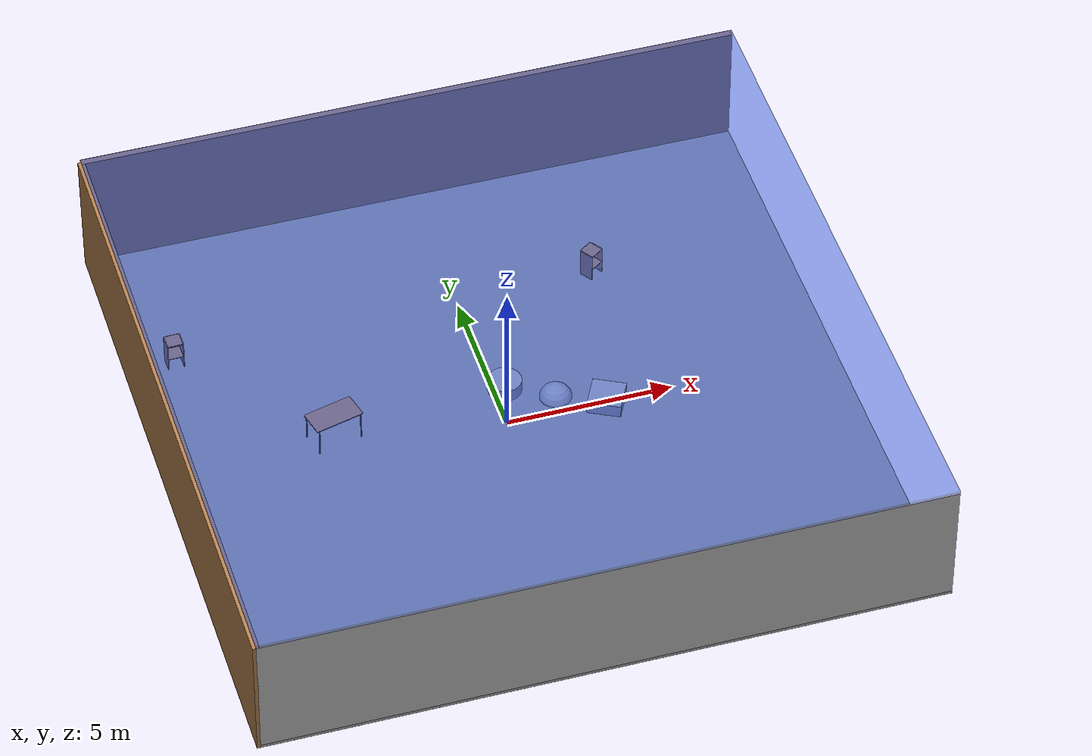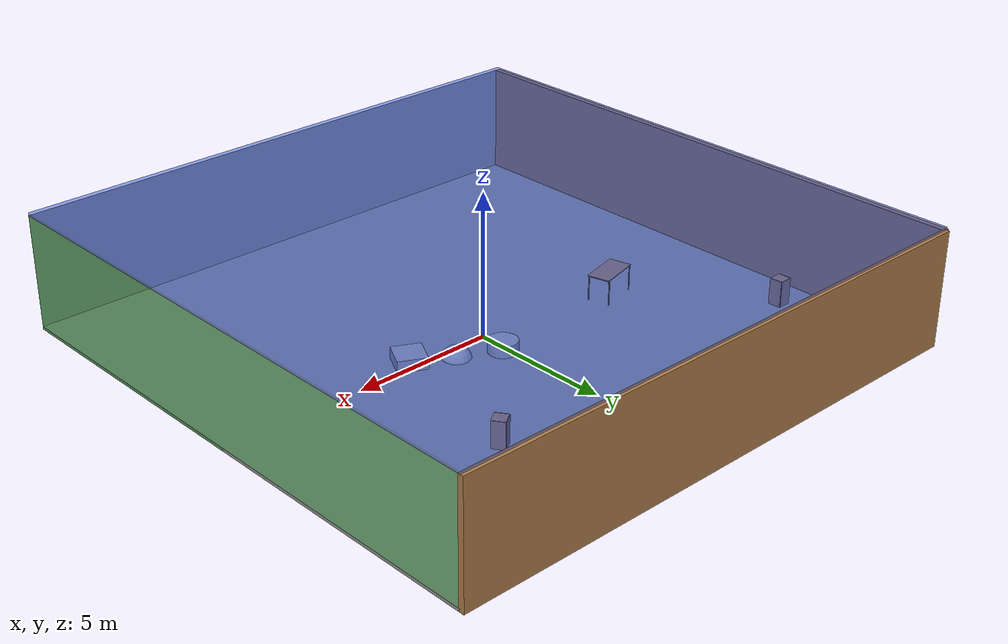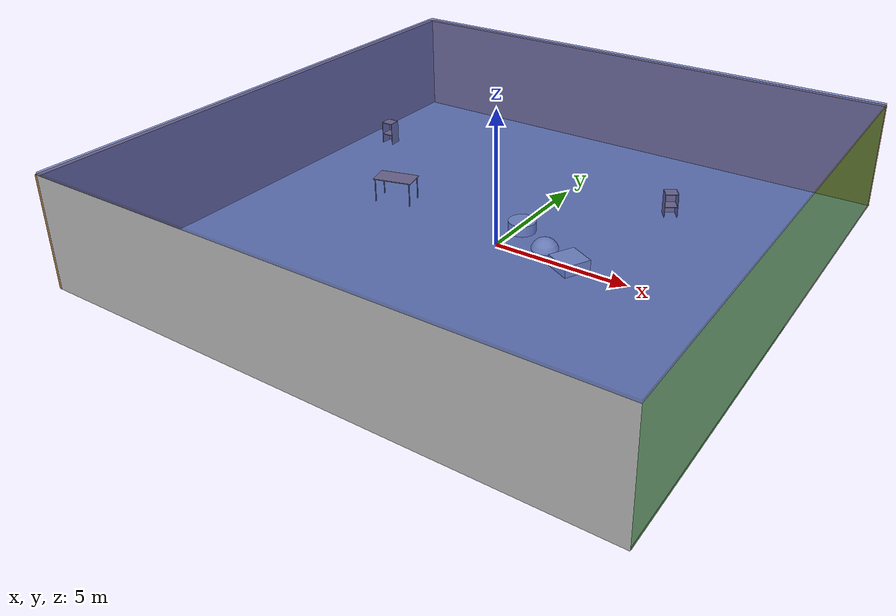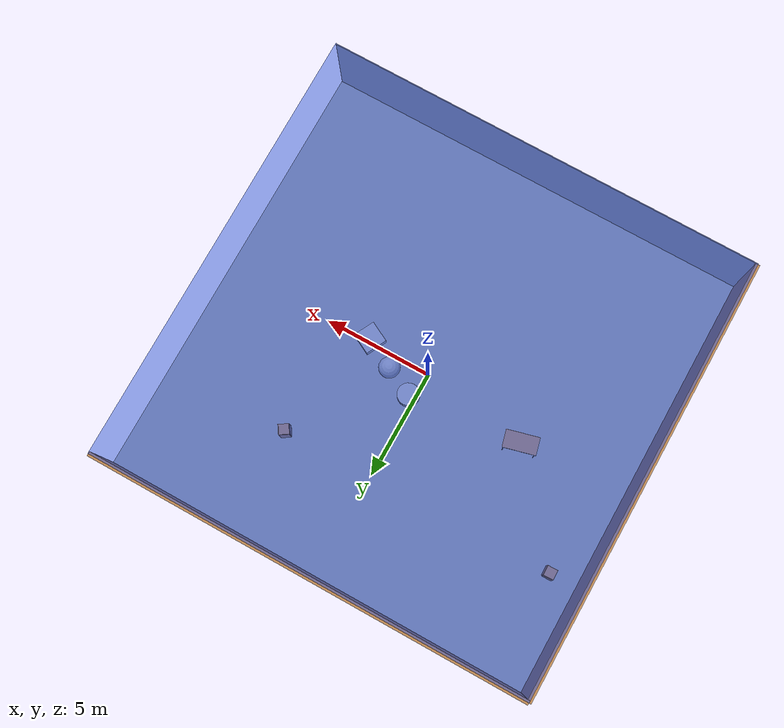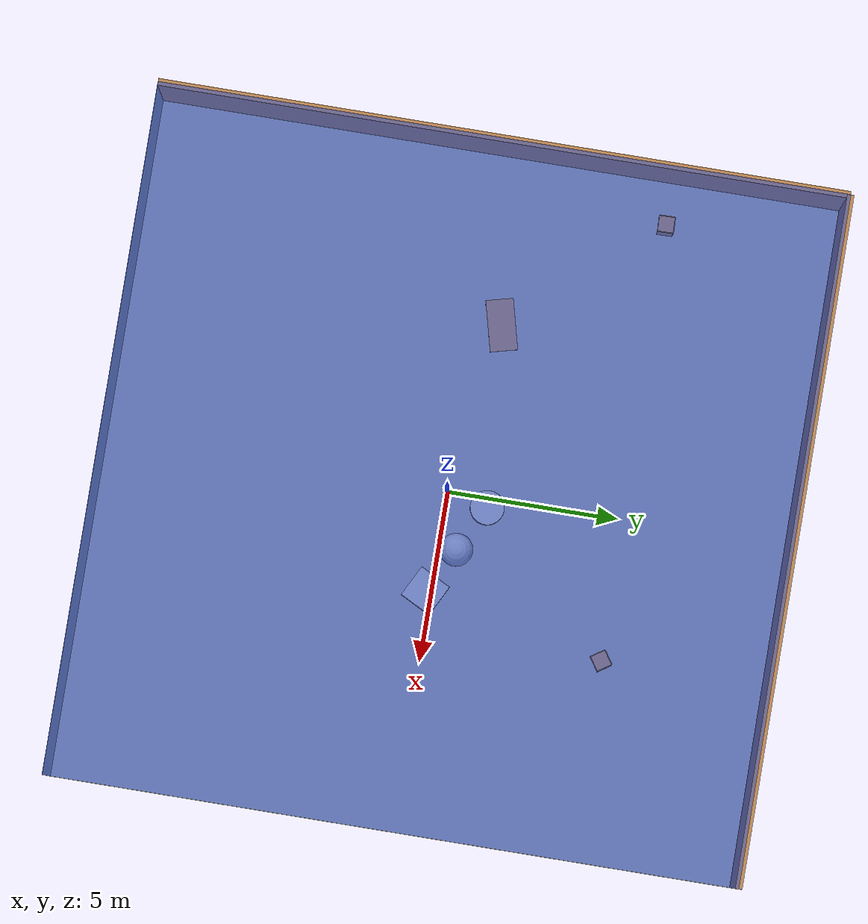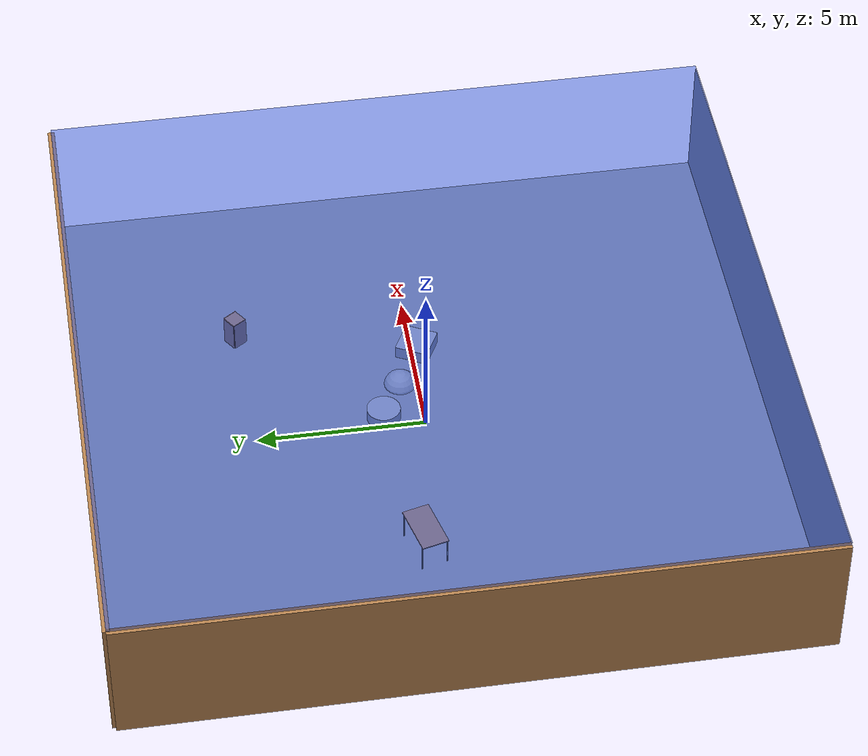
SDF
<sdf version="1.4">
 <world name="default">
  <physics type="ode">
   <max_step_size>0.001</max_step_size>
   <real_time_factor>1</real_time_factor>
   <real_time_update_rate>1000</real_time_update_rate>
   <gravity>0 0 -9.8</gravity>
  </physics>
  <scene><ambient>0.4 0.4 0.4 1</ambient><background>0.7 0.7 0.7 1</background><shadows>1</shadows></scene>
  <model name="Surrounding">
   <static>1</static>
   <link name="Ceiling">
    <collision name="Ceiling_Collision"><geometry><box><size>20 20 0.1</size></box></geometry></collision>
    <visual name="Ceiling_Visual">
     <geometry><box><size>20 20 0.1</size></box></geometry>
     <material>
      <script><uri>file://media/materials/scripts/gazebo.material</uri><name>Gazebo/BlueTransparent</name></script>
     </material>
    </visual>
    <pose>0 0 4.05 0 0 0</pose>
   </link>
   <link name="Wall_South">
    <collision name="Wall_South_Collision">
     <geometry><box><size>20 0 4</size></box></geometry>
     <pose>0 0 2 0 -0 0</pose>
    </collision>
    <visual name="Wall_South_Visual">
     <pose>0 0 2 0 -0 0</pose>
     <geometry><box><size>20 0 4</size></box></geometry>
     <material>
      <script><uri>file://media/materials/scripts/gazebo.material</uri><name>Gazebo/LightOff</name></script>
     </material>
    </visual>
    <velocity_decay><linear>0</linear><angular>0</angular></velocity_decay>
    <pose>0 -10 0 0 -0 0</pose>
   </link>
   <link name="Wall_East">
    <collision name="Wall_21_Collision">
     <geometry><box><size>20 0 4</size></box></geometry>
     <pose>0 0 2 0 -0 0</pose>
    </collision>
    <visual name="Wall_21_Visual">
     <pose>0 0 2 0 -0 0</pose>
     <geometry><box><size>20 0 4</size></box></geometry>
     <material>
      <script><uri>file://media/materials/scripts/gazebo.material</uri><name>Gazebo/GreenTransparent</name></script>
     </material>
    </visual>
    <velocity_decay><linear>0</linear><angular>0</angular></velocity_decay>
    <pose>10 0 0 0 -0 1.5708</pose>
   </link>
   <link name="Wall_North">
    <collision name="Wall_22_Collision">
     <geometry><box><size>20 0.2 4</size></box></geometry>
     <pose>0 0 2 0 -0 0</pose>
    </collision>
    <visual name="Wall_22_Visual">
     <pose>0 0 2 0 -0 0</pose>
     <geometry><box><size>20 0.2 4</size></box></geometry>
     <material>
      <script><uri>file://media/materials/scripts/gazebo.material</uri><name>Gazebo/WoodPallet</name></script>
     </material>
    </visual>
    <velocity_decay><linear>0</linear><angular>0</angular></velocity_decay>
    <pose>0 10 0 0 -0 0</pose>
   </link>
   <link name="Wall_West">
    <collision name="Wall_23_Collision">
     <geometry><box><size>20 0.2 4</size></box></geometry>
     <pose>0 0 2 0 -0 0</pose>
    </collision>
    <visual name="Wall_23_Visual">
     <pose>0 0 2 0 -0 0</pose>
     <geometry><box><size>20 0.2 4</size></box></geometry>
     <material>
      <script><uri>file://media/materials/scripts/gazebo.material</uri><name>Gazebo/WoodPallet</name></script>
     </material>
    </visual>
    <velocity_decay><linear>0</linear><angular>0</angular></velocity_decay>
    <pose>-10 0 0 0 0 -1.5708</pose>
   </link>
   <link name="Ground_link">
    <collision name="collision">
     <pose>0 0 .05 0 -0 0</pose>
     <geometry><box><size>20 20 0.1</size></box></geometry>
    </collision>
    <visual name="visual">
     <pose>0 0 .05 0 -0 0</pose>
     <geometry><box><size>20 20 0.1</size></box></geometry>
     <material>
      <script><uri>file://media/materials/scripts/gazebo.material</uri><name>Gazebo/GreyGradientSky</name></script>
     </material>
    </visual>
   </link>
   <static>1</static>
  </model>
  <spherical_coordinates>
   <surface_model>EARTH_WGS84</surface_model>
   <latitude_deg>0</latitude_deg>
   <longitude_deg>0</longitude_deg>
   <elevation>0</elevation>
   <heading_deg>0</heading_deg>
  </spherical_coordinates>
  <light name="lightball_0" type="diffuse">
   <diffuse>0.8 0.8 0.8 1</diffuse>
   <specular>0.2 0.2 0.2 1</specular>
   <attenuation>
    <range>100</range>
    <constant>0.7</constant>
    <linear>0.01</linear>
    <quadratic>0.001</quadratic>
   </attenuation>
   <direction>-0.5 0.1 -0.9</direction>
   <pose>-7.86423729176 -2.25439187281 3.28845980249 0 0 0</pose>
  </light>
  <light name="lightball_1" type="diffuse">
   <diffuse>0.8 0.8 0.8 1</diffuse>
   <specular>0.2 0.2 0.2 1</specular>
   <attenuation>
    <range>100</range>
    <constant>0.7</constant>
    <linear>0.01</linear>
    <quadratic>0.001</quadratic>
   </attenuation>
   <direction>-0.5 0.1 -0.9</direction>
   <pose>5.94866732142 1.70400309107 3.05765172644 0 0 0</pose>
  </light>
  <light name="lightball_2" type="diffuse">
   <diffuse>0.8 0.8 0.8 1</diffuse>
   <specular>0.2 0.2 0.2 1</specular>
   <attenuation>
    <range>100</range>
    <constant>0.7</constant>
    <linear>0.01</linear>
    <quadratic>0.001</quadratic>
   </attenuation>
   <direction>-0.5 0.1 -0.9</direction>
   <pose>8.90604403998 6.36954489846 3.72825430615 0 0 0</pose>
  </light>
  <light name="lightball_3" type="diffuse">
   <diffuse>0.8 0.8 0.8 1</diffuse>
   <specular>0.2 0.2 0.2 1</specular>
   <attenuation>
    <range>100</range>
    <constant>0.7</constant>
    <linear>0.01</linear>
    <quadratic>0.001</quadratic>
   </attenuation>
   <direction>-0.5 0.1 -0.9</direction>
   <pose>3.25867081219 -5.94342898351 3.30746065692 0 0 0</pose>
  </light>
  <light name="lightball_4" type="diffuse">
   <diffuse>0.8 0.8 0.8 1</diffuse>
   <specular>0.2 0.2 0.2 1</specular>
   <attenuation>
    <range>100</range>
    <constant>0.7</constant>
    <linear>0.01</linear>
    <quadratic>0.001</quadratic>
   </attenuation>
   <direction>-0.5 0.1 -0.9</direction>
   <pose>4.62199698485 -9.18069505193 3.09441463822 0 0 0</pose>
  </light>
  <light name="lightball_5" type="diffuse">
   <diffuse>0.8 0.8 0.8 1</diffuse>
   <specular>0.2 0.2 0.2 1</specular>
   <attenuation>
    <range>100</range>
    <constant>0.7</constant>
    <linear>0.01</linear>
    <quadratic>0.001</quadratic>
   </attenuation>
   <direction>-0.5 0.1 -0.9</direction>
   <pose>3.12836844539 -8.41170382933 2.61610812127 0 0 0</pose>
  </light>
  <light name="lightball_6" type="diffuse">
   <diffuse>0.8 0.8 0.8 1</diffuse>
   <specular>0.2 0.2 0.2 1</specular>
   <attenuation>
    <range>100</range>
    <constant>0.7</constant>
    <linear>0.01</linear>
    <quadratic>0.001</quadratic>
   </attenuation>
   <direction>-0.5 0.1 -0.9</direction>
   <pose>0.460471554091 -9.80747986216 1.5167740281 0 0 0</pose>
  </light>
  <light name="lightball_7" type="diffuse">
   <diffuse>0.8 0.8 0.8 1</diffuse>
   <specular>0.2 0.2 0.2 1</specular>
   <attenuation>
    <range>100</range>
    <constant>0.7</constant>
    <linear>0.01</linear>
    <quadratic>0.001</quadratic>
   </attenuation>
   <direction>-0.5 0.1 -0.9</direction>
   <pose>9.64412424323 -6.15087931776 2.78742156897 0 0 0</pose>
  </light>
  <light name="lightball_8" type="diffuse">
   <diffuse>0.8 0.8 0.8 1</diffuse>
   <specular>0.2 0.2 0.2 1</specular>
   <attenuation>
    <range>100</range>
    <constant>0.7</constant>
    <linear>0.01</linear>
    <quadratic>0.001</quadratic>
   </attenuation>
   <direction>-0.5 0.1 -0.9</direction>
   <pose>-3.01607253092 0.55106362045 3.83377001383 0 0 0</pose>
  </light>
  <light name="lightball_9" type="diffuse">
   <diffuse>0.8 0.8 0.8 1</diffuse>
   <specular>0.2 0.2 0.2 1</specular>
   <attenuation>
    <range>100</range>
    <constant>0.7</constant>
    <linear>0.01</linear>
    <quadratic>0.001</quadratic>
   </attenuation>
   <direction>-0.5 0.1 -0.9</direction>
   <pose>8.24746060892 8.69146621554 2.43528607928 0 0 0</pose>
  </light>
  <light name="lightball_10" type="diffuse">
   <diffuse>0.8 0.8 0.8 1</diffuse>
   <specular>0.2 0.2 0.2 1</specular>
   <attenuation>
    <range>100</range>
    <constant>0.7</constant>
    <linear>0.01</linear>
    <quadratic>0.001</quadratic>
   </attenuation>
   <direction>-0.5 0.1 -0.9</direction>
   <pose>0.112097058314 1.46297885758 1.8429288584 0 0 0</pose>
  </light>
  <include><uri>model://cabinet</uri><pose>-8.614194387 4.99844370751 0 0 0 1.5919580528</pose></include>
  <include><uri>model://table</uri><pose>-4.95586190054 0.773444549584 0 0 0 0.248188398099</pose></include>
  <include>
   <uri>model://textured_shapes</uri>
   <pose>1.62775641681 0.526866097255 0 0 0 1.09489235792</pose>
  </include>
  <include><uri>model://cabinet</uri><pose>4.15172041496 5.16492601572 0 0 0 2.16058841805</pose></include>
 </world>
</sdf>

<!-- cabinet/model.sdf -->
<sdf version="1.5">
  <model name="cabinet">
    <static>true</static>
    <link name="cabinet_bottom_plate">
      <inertial>
        <pose>0 0 -1 0 0 0</pose>
        <inertia>
          <ixx>2.050000</ixx>
          <ixy>0</ixy>
          <ixz>0</ixz>
          <iyy>2.050000</iyy>
          <iyz>0</iyz>
          <izz>2.050000</izz>
        </inertia>
        <mass>25.000000</mass>
      </inertial>
      <collision name="cabinet_bottom_plate_geom">
        <pose>0 0 0.010000 0 0 0</pose>
        <geometry>
          <box>
            <size>0.450000 0.450000 0.020000</size>
          </box>
        </geometry>
      </collision>
      <visual name="cabinet_bottom_plate_geom_visual">
        <pose>0 0 0.010000 0 0 0</pose>
        <geometry>
          <box>
            <size>0.450000 0.450000 0.020000</size>
          </box>
        </geometry>
        <material>
          <script>
            <uri>model://media/materials/scripts/gazebo.material</uri>
            <name>Gazebo/Wood</name>
          </script>
        </material>
      </visual>
      <collision name="cabinet_bottom_plate_geom_cabinet_back_plate">
        <pose>0.235000 0 0.510000 0 0 0</pose>
        <geometry>
          <box>
            <size>0.020000 0.450000 1.020000</size>
          </box>
        </geometry>
      </collision>
      <visual name="cabinet_bottom_plate_geom_cabinet_back_plate_visual">
        <pose>0.235000 0 0.510000 0 0 0</pose>
        <geometry>
          <box>
            <size>0.020000 0.450000 1.020000</size>
          </box>
        </geometry>
        <material>
          <script>
            <uri>model://media/materials/scripts/gazebo.material</uri>
            <name>Gazebo/Wood</name>
          </script>
        </material>
      </visual>
      <collision name="cabinet_bottom_plate_geom_cabinet_left_plate">
        <pose>0 0.235000 0.510000 0 0 0</pose>
        <geometry>
          <box>
            <size>0.450000 0.020000 1.020000</size>
          </box>
        </geometry>
      </collision>
      <visual name="cabinet_bottom_plate_geom_cabinet_left_plate_visual">
        <pose>0 0.235000 0.510000 0 0 0</pose>
        <geometry>
          <box>
            <size>0.450000 0.020000 1.020000</size>
          </box>
        </geometry>
        <material>
          <script>
            <uri>model://media/materials/scripts/gazebo.material</uri>
            <name>Gazebo/Wood</name>
          </script>
        </material>
      </visual>
      <collision name="cabinet_bottom_plate_geom_cabinet_middle_plate">
        <pose>0 0 0.510000 0 0 0</pose>
        <geometry>
          <box>
            <size>0.450000 0.450000 0.020000</size>
          </box>
        </geometry>
      </collision>
      <visual name="cabinet_bottom_plate_geom_cabinet_middle_plate_visual">
        <pose>0 0 0.510000 0 0 0</pose>
        <geometry>
          <box>
            <size>0.450000 0.450000 0.020000</size>
          </box>
        </geometry>
        <material>
          <script>
            <uri>model://media/materials/scripts/gazebo.material</uri>
            <name>Gazebo/Wood</name>
          </script>
        </material>
      </visual>
      <collision name="cabinet_bottom_plate_geom_cabinet_right_plate">
        <pose>0 -0.235000 0.510000 0 0 0</pose>
        <geometry>
          <box>
            <size>0.450000 0.020000 1.020000</size>
          </box>
        </geometry>
      </collision>
      <visual name="cabinet_bottom_plate_geom_cabinet_right_plate_visual">
        <pose>0 -0.235000 0.510000 0 0 0</pose>
        <geometry>
          <box>
            <size>0.450000 0.020000 1.020000</size>
          </box>
        </geometry>
        <material>
          <script>
            <uri>model://media/materials/scripts/gazebo.material</uri>
            <name>Gazebo/Wood</name>
          </script>
        </material>
      </visual>
      <collision name="cabinet_bottom_plate_geom_cabinet_top_plate">
        <pose>0 0 1.010000 0 0 0</pose>
        <geometry>
          <box>
            <size>0.450000 0.450000 0.020000</size>
          </box>
        </geometry>
      </collision>
      <visual name="cabinet_bottom_plate_geom_cabinet_top_plate_visual">
        <pose>0 0 1.010000 0 0 0</pose>
        <geometry>
          <box>
            <size>0.450000 0.450000 0.020000</size>
          </box>
        </geometry>
        <material>
          <script>
            <uri>model://media/materials/scripts/gazebo.material</uri>
            <name>Gazebo/Wood</name>
          </script>
        </material>
      </visual>
    </link>
  </model>
</sdf>

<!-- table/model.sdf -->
<sdf version="1.5">
  <model name="table">
    <static>true</static>
    <link name="link">
      <collision name="surface">
        <pose>0 0 1.0 0 0 0</pose>
        <geometry>
          <box>
            <size>1.5 0.8 0.03</size>
          </box>
        </geometry>
        <surface>
          <friction>
            <ode>
              <mu>0.6</mu>
              <mu2>0.6</mu2>
            </ode>
          </friction>
        </surface>
      </collision>
      <visual name="visual1">
        <pose>0 0 1.0 0 0 0</pose>
        <geometry>
          <box>
            <size>1.5 0.8 0.03</size>
          </box>
        </geometry>
        <material>
          <script>
            <uri>model://media/materials/scripts/gazebo.material</uri>
            <name>Gazebo/Wood</name>
          </script>
        </material>
      </visual>
      <collision name="front_left_leg">
        <pose>0.68 0.38 0.5 0 0 0</pose>
        <geometry>
          <cylinder>
            <radius>0.02</radius>
            <length>1.0</length>
          </cylinder>
        </geometry>
      </collision>
      <visual name="front_left_leg">
        <pose>0.68 0.38 0.5 0 0 0</pose>
        <geometry>
          <cylinder>
            <radius>0.02</radius>
            <length>1.0</length>
          </cylinder>
        </geometry>
        <material>
          <script>
            <uri>model://media/materials/scripts/gazebo.material</uri>
            <name>Gazebo/Grey</name>
          </script>
        </material>
      </visual>
      <collision name="front_right_leg">
        <pose>0.68 -0.38 0.5 0 0 0</pose>
        <geometry>
          <cylinder>
            <radius>0.02</radius>
            <length>1.0</length>
          </cylinder>
        </geometry>
      </collision>
      <visual name="front_right_leg">
        <pose>0.68 -0.38 0.5 0 0 0</pose>
        <geometry>
          <cylinder>
            <radius>0.02</radius>
            <length>1.0</length>
          </cylinder>
        </geometry>
        <material>
          <script>
            <uri>model://media/materials/scripts/gazebo.material</uri>
            <name>Gazebo/Grey</name>
          </script>
        </material>
      </visual>
      <collision name="back_right_leg">
        <pose>-0.68 -0.38 0.5 0 0 0</pose>
        <geometry>
          <cylinder>
            <radius>0.02</radius>
            <length>1.0</length>
          </cylinder>
        </geometry>
      </collision>
      <visual name="back_right_leg">
        <pose>-0.68 -0.38 0.5 0 0 0</pose>
        <geometry>
          <cylinder>
            <radius>0.02</radius>
            <length>1.0</length>
          </cylinder>
        </geometry>
        <material>
          <script>
            <uri>model://media/materials/scripts/gazebo.material</uri>
            <name>Gazebo/Grey</name>
          </script>
        </material>
      </visual>
      <collision name="back_left_leg">
        <pose>-0.68 0.38 0.5 0 0 0</pose>
        <geometry>
          <cylinder>
            <radius>0.02</radius>
            <length>1.0</length>
          </cylinder>
        </geometry>
      </collision>
      <visual name="back_left_leg">
        <pose>-0.68 0.38 0.5 0 0 0</pose>
        <geometry>
          <cylinder>
            <radius>0.02</radius>
            <length>1.0</length>
          </cylinder>
        </geometry>
        <material>
          <script>
            <uri>model://media/materials/scripts/gazebo.material</uri>
            <name>Gazebo/Grey</name>
          </script>
        </material>
      </visual>
    </link>
  </model>
</sdf>

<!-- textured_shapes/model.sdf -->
<sdf version="1.6">
  <model name="textured_shapes">
    <pose>0 0 0.5 0 0 0</pose>
    <link name="box">
      <pose>0 -1.5 0 0 0 0</pose>
      <collision name="collision">
        <geometry>
          <box>
            <size>1 1 1</size>
          </box>
        </geometry>
      </collision>
      <visual name="visual">
        <geometry>
          <box>
            <size>1 1 1</size>
          </box>
        </geometry>
        <material>
          <script>
            <uri>model://../model_source/models/textured_shapes/materials/scripts</uri>
            <uri>model://../model_source/models/textured_shapes/materials/textures</uri>
            <name>TexturedShape/Squares</name>
          </script>
        </material>
      </visual>
    </link>
    <link name="sphere">
      <collision name="collision">
        <geometry>
          <sphere>
            <radius>0.5</radius>
          </sphere>
        </geometry>
      </collision>
      <visual name="visual">
        <geometry>
          <sphere>
            <radius>0.5</radius>
          </sphere>
        </geometry>
        <material>
          <script>
            <uri>model://../model_source/models/textured_shapes/materials/scripts</uri>
            <uri>model://../model_source/models/textured_shapes/materials/textures</uri>
            <name>TexturedShape/Squares</name>
          </script>
        </material>
      </visual>
    </link>
    <link name="cylinder">
      <pose>0 1.5 0 0 0 0</pose>
      <collision name="collision">
        <geometry>
          <cylinder>
            <radius>0.5</radius>
            <length>1</length>
          </cylinder>
        </geometry>
      </collision>
      <visual name="visual">
        <geometry>
          <cylinder>
            <radius>0.5</radius>
            <length>1</length>
          </cylinder>
        </geometry>
        <material>
          <script>
            <uri>model://../model_source/models/textured_shapes/materials/scripts</uri>
            <uri>model://../model_source/models/textured_shapes/materials/textures</uri>
            <name>TexturedShape/Squares</name>
          </script>
        </material>
      </visual>
    </link>
  </model>
</sdf>
